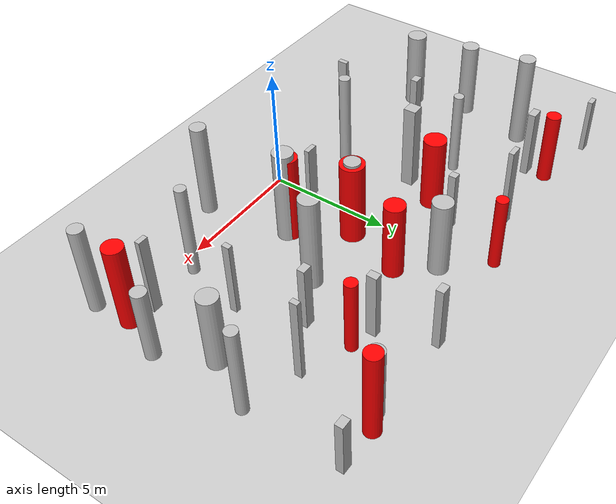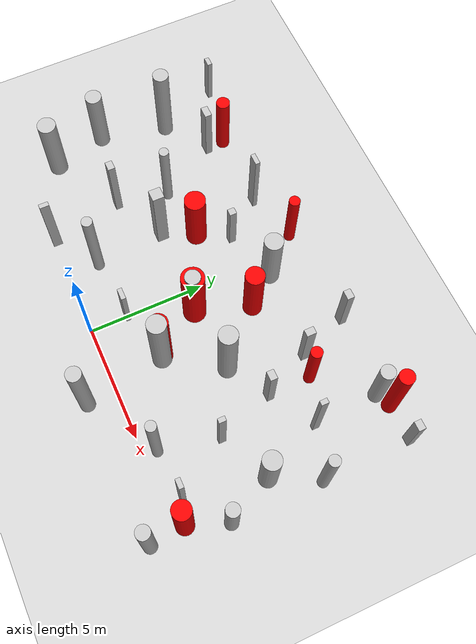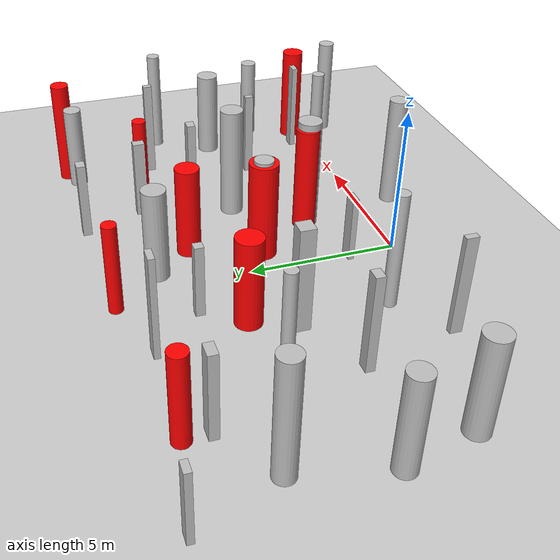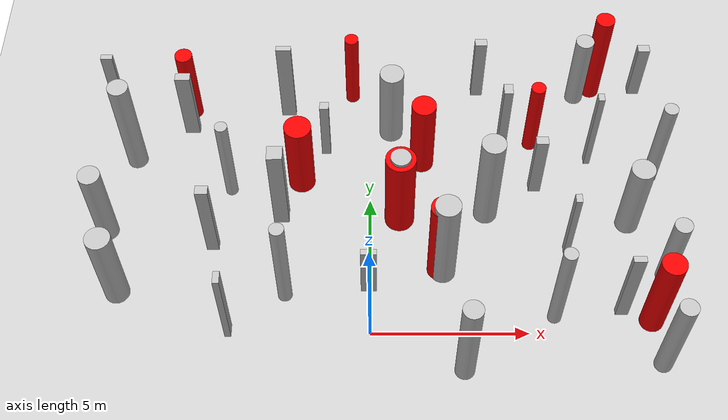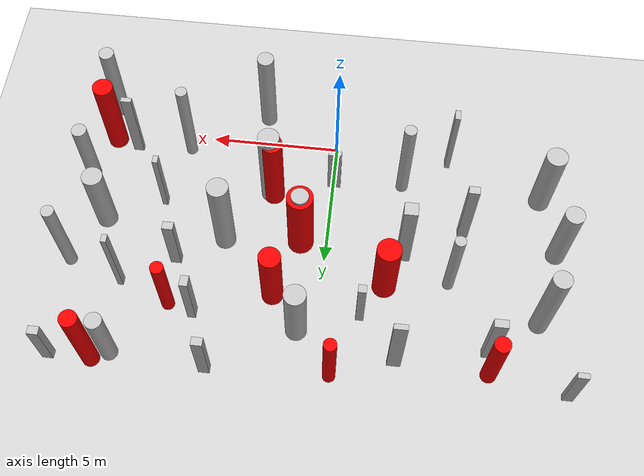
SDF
<sdf version="1.7">
 <world name="default">
  <model name="ground_plane">
   <static>1</static>
   <link name="link">
    <collision name="collision">
     <geometry><plane><normal>0 0 1</normal><size>100 100</size></plane></geometry>
     <surface>
      <contact><collide_bitmask>65535</collide_bitmask></contact>
      <friction><ode><mu>100</mu><mu2>50</mu2></ode></friction>
     </surface>
    </collision>
    <visual name="visual">
     <cast_shadows>0</cast_shadows>
     <geometry><plane><normal>0 0 1</normal><size>100 100</size></plane></geometry>
     <material>
      <script><uri>file://media/materials/scripts/gazebo.material</uri><name>Gazebo/Grey</name></script>
     </material>
    </visual>
   </link>
  </model>
  <model name="dynamic_cylinder_0_1.0_1.0_3.4">
   <static>true</static>
   <pose>0.9762700785464951 4.30378732744839 1.7187936056313462 0 0 0</pose>
   <link name="link">
    <visual name="visual">
     <geometry>
      <cylinder><radius>0.4890988281503088</radius><length>3.4375872112626924</length></cylinder>
     </geometry>
     <material><ambient>1 0 0 1</ambient><diffuse>1 0 0 1</diffuse><specular>0.5 0.5 0.5 1</specular></material>
    </visual>
    <collision name="dynamic_collision">
     <geometry>
      <cylinder><radius>0.4890988281503088</radius><length>3.4375872112626924</length></cylinder>
     </geometry>
     <surface><contact><collide_bitmask>65535</collide_bitmask></contact></surface>
    </collision>
   </link>
   <plugin name="obstacle_motion" filename="libobstaclePathPlugin.so">
    <orientation>false</orientation>
    <loop>0</loop>
    <velocity>0.8917730007820798</velocity>
    <path>
     <waypoint>0.9762700785464951 4.30378732744839 1.7187936056313462</waypoint>
     <waypoint>0.8976636599379368 -1.5269040132219054 1.7187936056313462</waypoint>
    </path>
   </plugin>
  </model>
  <model name="dynamic_cylinder_1_0.9_0.9_3.1">
   <static>true</static>
   <pose>-2.3311696234844455 5.834500761653292 1.5435646498507705 0 0 0</pose>
   <link name="link">
    <visual name="visual">
     <geometry>
      <cylinder><radius>0.4497859536643814</radius><length>3.087129299701541</length></cylinder>
     </geometry>
     <material><ambient>1 0 0 1</ambient><diffuse>1 0 0 1</diffuse><specular>0.5 0.5 0.5 1</specular></material>
    </visual>
    <collision name="dynamic_collision">
     <geometry>
      <cylinder><radius>0.4497859536643814</radius><length>3.087129299701541</length></cylinder>
     </geometry>
     <surface><contact><collide_bitmask>65535</collide_bitmask></contact></surface>
    </collision>
   </link>
   <plugin name="obstacle_motion" filename="libobstaclePathPlugin.so">
    <orientation>false</orientation>
    <loop>0</loop>
    <velocity>0.02021839744032572</velocity>
    <path>
     <waypoint>-2.3311696234844455 5.834500761653292 1.5435646498507705</waypoint>
     <waypoint>1.3608912218786458 8.51193276585322 1.5435646498507705</waypoint>
    </path>
   </plugin>
  </model>
  <model name="dynamic_cylinder_2_0.5_0.5_3.1">
   <static>true</static>
   <pose>5.563135018997009 7.400242964936382 1.5591372129344667 0 0 0</pose>
   <link name="link">
    <visual name="visual">
     <geometry>
      <cylinder><radius>0.24300598622271394</radius><length>3.1182744258689334</length></cylinder>
     </geometry>
     <material><ambient>1 0 0 1</ambient><diffuse>1 0 0 1</diffuse><specular>0.5 0.5 0.5 1</specular></material>
    </visual>
    <collision name="dynamic_collision">
     <geometry>
      <cylinder><radius>0.24300598622271394</radius><length>3.1182744258689334</length></cylinder>
     </geometry>
     <surface><contact><collide_bitmask>65535</collide_bitmask></contact></surface>
    </collision>
   </link>
   <plugin name="obstacle_motion" filename="libobstaclePathPlugin.so">
    <orientation>false</orientation>
    <loop>0</loop>
    <velocity>0.6399210213275238</velocity>
    <path>
     <waypoint>5.563135018997009 7.400242964936382 1.5591372129344667</waypoint>
     <waypoint>5.983171284334471 -0.7704127549413631 1.5591372129344667</waypoint>
    </path>
   </plugin>
  </model>
  <model name="dynamic_cylinder_3_0.8_0.8_3.6">
   <static>true</static>
   <pose>8.893378340991678 0.43696643500143395 1.7842169744343241 0 0 0</pose>
   <link name="link">
    <visual name="visual">
     <geometry>
      <cylinder><radius>0.3852906491227631</radius><length>3.5684339488686483</length></cylinder>
     </geometry>
     <material><ambient>1 0 0 1</ambient><diffuse>1 0 0 1</diffuse><specular>0.5 0.5 0.5 1</specular></material>
    </visual>
    <collision name="dynamic_collision">
     <geometry>
      <cylinder><radius>0.3852906491227631</radius><length>3.5684339488686483</length></cylinder>
     </geometry>
     <surface><contact><collide_bitmask>65535</collide_bitmask></contact></surface>
    </collision>
   </link>
   <plugin name="obstacle_motion" filename="libobstaclePathPlugin.so">
    <orientation>false</orientation>
    <loop>0</loop>
    <velocity>0.018789800436355142</velocity>
    <path>
     <waypoint>8.893378340991678 0.43696643500143395 1.7842169744343241</waypoint>
     <waypoint>-4.70888775790746 5.484673788684333 1.7842169744343241</waypoint>
    </path>
   </plugin>
  </model>
  <model name="dynamic_cylinder_4_0.8_0.8_3.7">
   <static>true</static>
   <pose>2.2419144544484286 2.3386799374951384 1.8488155979636325 0 0 0</pose>
   <link name="link">
    <visual name="visual">
     <geometry>
      <cylinder><radius>0.4000300146337003</radius><length>3.697631195927265</length></cylinder>
     </geometry>
     <material><ambient>1 0 0 1</ambient><diffuse>1 0 0 1</diffuse><specular>0.5 0.5 0.5 1</specular></material>
    </visual>
    <collision name="dynamic_collision">
     <geometry>
      <cylinder><radius>0.4000300146337003</radius><length>3.697631195927265</length></cylinder>
     </geometry>
     <surface><contact><collide_bitmask>65535</collide_bitmask></contact></surface>
    </collision>
   </link>
   <plugin name="obstacle_motion" filename="libobstaclePathPlugin.so">
    <orientation>false</orientation>
    <loop>0</loop>
    <velocity>0.06022547162926983</velocity>
    <path>
     <waypoint>2.2419144544484286 2.3386799374951384 1.8488155979636325</waypoint>
     <waypoint>3.636405982069668 -2.80984198852428 1.8488155979636325</waypoint>
    </path>
   </plugin>
  </model>
  <model name="dynamic_cylinder_7_0.5_0.5_3.1">
   <static>true</static>
   <pose>-0.6269759670459685 9.535221763806742 1.5600982806065844 0 0 0</pose>
   <link name="link">
    <visual name="visual">
     <geometry>
      <cylinder><radius>0.23561831568627323</radius><length>3.120196561213169</length></cylinder>
     </geometry>
     <material><ambient>1 0 0 1</ambient><diffuse>1 0 0 1</diffuse><specular>0.5 0.5 0.5 1</specular></material>
    </visual>
    <collision name="dynamic_collision">
     <geometry>
      <cylinder><radius>0.23561831568627323</radius><length>3.120196561213169</length></cylinder>
     </geometry>
     <surface><contact><collide_bitmask>65535</collide_bitmask></contact></surface>
    </collision>
   </link>
   <plugin name="obstacle_motion" filename="libobstaclePathPlugin.so">
    <orientation>false</orientation>
    <loop>0</loop>
    <velocity>0.29614019752214493</velocity>
    <path>
     <waypoint>-0.6269759670459685 9.535221763806742 1.5600982806065844</waypoint>
     <waypoint>4.785271587966033 -9.216244154913586 1.5600982806065844</waypoint>
    </path>
   </plugin>
  </model>
  <model name="dynamic_cylinder_16_0.6_0.6_3.1">
   <static>true</static>
   <pose>-6.276139882393277 8.887447799678672 1.5290145801619377 0 0 0</pose>
   <link name="link">
    <visual name="visual">
     <geometry>
      <cylinder><radius>0.2935387645982308</radius><length>3.0580291603238754</length></cylinder>
     </geometry>
     <material><ambient>1 0 0 1</ambient><diffuse>1 0 0 1</diffuse><specular>0.5 0.5 0.5 1</specular></material>
    </visual>
    <collision name="dynamic_collision">
     <geometry>
      <cylinder><radius>0.2935387645982308</radius><length>3.0580291603238754</length></cylinder>
     </geometry>
     <surface><contact><collide_bitmask>65535</collide_bitmask></contact></surface>
    </collision>
   </link>
   <plugin name="obstacle_motion" filename="libobstaclePathPlugin.so">
    <orientation>false</orientation>
    <loop>0</loop>
    <velocity>0.4344166255581208</velocity>
    <path>
     <waypoint>-6.276139882393277 8.887447799678672 1.5290145801619377</waypoint>
     <waypoint>-0.1908238276486589 -5.451707440533536 1.5290145801619377</waypoint>
    </path>
   </plugin>
  </model>
  <model name="dynamic_cylinder_17_0.6_0.6_3.8">
   <static>true</static>
   <pose>7.933425860806842 9.806778947934088 1.8791893269180706 0 0 0</pose>
   <link name="link">
    <visual name="visual">
     <geometry>
      <cylinder><radius>0.3150391682515694</radius><length>3.7583786538361412</length></cylinder>
     </geometry>
     <material><ambient>1 0 0 1</ambient><diffuse>1 0 0 1</diffuse><specular>0.5 0.5 0.5 1</specular></material>
    </visual>
    <collision name="dynamic_collision">
     <geometry>
      <cylinder><radius>0.3150391682515694</radius><length>3.7583786538361412</length></cylinder>
     </geometry>
     <surface><contact><collide_bitmask>65535</collide_bitmask></contact></surface>
    </collision>
   </link>
   <plugin name="obstacle_motion" filename="libobstaclePathPlugin.so">
    <orientation>false</orientation>
    <loop>0</loop>
    <velocity>0.32001715082246784</velocity>
    <path>
     <waypoint>7.933425860806842 9.806778947934088 1.8791893269180706</waypoint>
     <waypoint>3.261564062002016 -4.733552465256987 1.8791893269180706</waypoint>
    </path>
   </plugin>
  </model>
  <model name="dynamic_cylinder_18_0.8_0.8_3.2">
   <static>true</static>
   <pose>1.766342271072114 6.620969104723809 1.592817972152976 0 0 0</pose>
   <link name="link">
    <visual name="visual">
     <geometry>
      <cylinder><radius>0.4062464829163446</radius><length>3.185635944305952</length></cylinder>
     </geometry>
     <material><ambient>1 0 0 1</ambient><diffuse>1 0 0 1</diffuse><specular>0.5 0.5 0.5 1</specular></material>
    </visual>
    <collision name="dynamic_collision">
     <geometry>
      <cylinder><radius>0.4062464829163446</radius><length>3.185635944305952</length></cylinder>
     </geometry>
     <surface><contact><collide_bitmask>65535</collide_bitmask></contact></surface>
    </collision>
   </link>
   <plugin name="obstacle_motion" filename="libobstaclePathPlugin.so">
    <orientation>false</orientation>
    <loop>0</loop>
    <velocity>0.9527916569719446</velocity>
    <path>
     <waypoint>1.766342271072114 6.620969104723809 1.592817972152976</waypoint>
     <waypoint>7.453013108947907 -4.529159303687285 1.592817972152976</waypoint>
    </path>
   </plugin>
  </model>
  <model name="cylinder_0_0.7_0.7_3.5">
   <static>true</static>
   <pose>0.9762700785464951 4.30378732744839 1.7724415914984484 0 0 0</pose>
   <link name="link">
    <visual name="visual">
     <geometry>
      <cylinder><radius>0.3270964398016714</radius><length>3.5448831829968968</length></cylinder>
     </geometry>
     <material>
      <ambient>0.75 0.75 0.75 1</ambient>
      <diffuse>0.75 0.75 0.75 1</diffuse>
      <specular>0.2 0.2 0.2 1</specular>
     </material>
    </visual>
    <collision name="static_collision">
     <geometry>
      <cylinder><radius>0.3270964398016714</radius><length>3.5448831829968968</length></cylinder>
     </geometry>
     <surface><contact><collide_bitmask>65535</collide_bitmask></contact></surface>
    </collision>
   </link>
  </model>
  <model name="cylinder_2_0.4_0.4_3.9">
   <static>true</static>
   <pose>5.834500761653292 0.5778983950580887 1.9627983191463305 0 0 0</pose>
   <link name="link">
    <visual name="visual">
     <geometry>
      <cylinder><radius>0.2213108174593661</radius><length>3.925596638292661</length></cylinder>
     </geometry>
     <material>
      <ambient>0.75 0.75 0.75 1</ambient>
      <diffuse>0.75 0.75 0.75 1</diffuse>
      <specular>0.2 0.2 0.2 1</specular>
     </material>
    </visual>
    <collision name="static_collision">
     <geometry>
      <cylinder><radius>0.2213108174593661</radius><length>3.925596638292661</length></cylinder>
     </geometry>
     <surface><contact><collide_bitmask>65535</collide_bitmask></contact></surface>
    </collision>
   </link>
  </model>
  <model name="cylinder_4_0.5_0.5_3.8">
   <static>true</static>
   <pose>9.572366844655281 5.983171284334471 1.8902645881432276 0 0 0</pose>
   <link name="link">
    <visual name="visual">
     <geometry>
      <cylinder><radius>0.23548232776067998</radius><length>3.7805291762864552</length></cylinder>
     </geometry>
     <material>
      <ambient>0.75 0.75 0.75 1</ambient>
      <diffuse>0.75 0.75 0.75 1</diffuse>
      <specular>0.2 0.2 0.2 1</specular>
     </material>
    </visual>
    <collision name="static_collision">
     <geometry>
      <cylinder><radius>0.23548232776067998</radius><length>3.7805291762864552</length></cylinder>
     </geometry>
     <surface><contact><collide_bitmask>65535</collide_bitmask></contact></surface>
    </collision>
   </link>
  </model>
  <model name="cylinder_6_0.4_0.4_3.6">
   <static>true</static>
   <pose>-4.70888775790746 5.484673788684333 1.7842169744343241 0 0 0</pose>
   <link name="link">
    <visual name="visual">
     <geometry>
      <cylinder><radius>0.20563694013090655</radius><length>3.5684339488686483</length></cylinder>
     </geometry>
     <material>
      <ambient>0.75 0.75 0.75 1</ambient>
      <diffuse>0.75 0.75 0.75 1</diffuse>
      <specular>0.2 0.2 0.2 1</specular>
     </material>
    </visual>
    <collision name="static_collision">
     <geometry>
      <cylinder><radius>0.20563694013090655</radius><length>3.5684339488686483</length></cylinder>
     </geometry>
     <surface><contact><collide_bitmask>65535</collide_bitmask></contact></surface>
    </collision>
   </link>
  </model>
  <model name="cylinder_12_0.6_0.6_3.0">
   <static>true</static>
   <pose>9.535221763806742 2.0969103949009202 1.5195938961271604 0 0 0</pose>
   <link name="link">
    <visual name="visual">
     <geometry>
      <cylinder><radius>0.2848420887729229</radius><length>3.039187792254321</length></cylinder>
     </geometry>
     <material>
      <ambient>0.75 0.75 0.75 1</ambient>
      <diffuse>0.75 0.75 0.75 1</diffuse>
      <specular>0.2 0.2 0.2 1</specular>
     </material>
    </visual>
    <collision name="static_collision">
     <geometry>
      <cylinder><radius>0.2848420887729229</radius><length>3.039187792254321</length></cylinder>
     </geometry>
     <surface><contact><collide_bitmask>65535</collide_bitmask></contact></surface>
    </collision>
   </link>
  </model>
  <model name="cylinder_14_0.7_0.7_3.3">
   <static>true</static>
   <pose>-8.717050073024312 3.849442387400398 1.6326947454697227 0 0 0</pose>
   <link name="link">
    <visual name="visual">
     <geometry>
      <cylinder><radius>0.3569744160400099</radius><length>3.2653894909394454</length></cylinder>
     </geometry>
     <material>
      <ambient>0.75 0.75 0.75 1</ambient>
      <diffuse>0.75 0.75 0.75 1</diffuse>
      <specular>0.2 0.2 0.2 1</specular>
     </material>
    </visual>
    <collision name="static_collision">
     <geometry>
      <cylinder><radius>0.3569744160400099</radius><length>3.2653894909394454</length></cylinder>
     </geometry>
     <surface><contact><collide_bitmask>65535</collide_bitmask></contact></surface>
    </collision>
   </link>
  </model>
  <model name="cylinder_28_0.8_0.8_3.2">
   <static>true</static>
   <pose>0.731584222174444 7.933425860806842 1.608448492199237 0 0 0</pose>
   <link name="link">
    <visual name="visual">
     <geometry>
      <cylinder><radius>0.3989234609300303</radius><length>3.216896984398474</length></cylinder>
     </geometry>
     <material>
      <ambient>0.75 0.75 0.75 1</ambient>
      <diffuse>0.75 0.75 0.75 1</diffuse>
      <specular>0.2 0.2 0.2 1</specular>
     </material>
    </visual>
    <collision name="static_collision">
     <geometry>
      <cylinder><radius>0.3989234609300303</radius><length>3.216896984398474</length></cylinder>
     </geometry>
     <surface><contact><collide_bitmask>65535</collide_bitmask></contact></surface>
    </collision>
   </link>
  </model>
  <model name="box_2_0.5_0.2_3.5">
   <static>true</static>
   <pose>-2.8877452430008876 8.80863890505626 1.7486636198505474 0 0 0</pose>
   <link name="link">
    <visual name="visual">
     <geometry><box><size>0.5 0.2 3.5</size></box></geometry>
     <material>
      <ambient>0.75 0.75 0.75 1</ambient>
      <diffuse>0.75 0.75 0.75 1</diffuse>
      <specular>0.2 0.2 0.2 1</specular>
     </material>
    </visual>
    <collision name="static_collision">
     <geometry><box><size>0.5 0.2 3.5</size></box></geometry>
     <surface><contact><collide_bitmask>65535</collide_bitmask></contact></surface>
    </collision>
   </link>
  </model>
  <model name="box_4_0.4_0.3_2.7">
   <static>true</static>
   <pose>5.5739079188220675 5.5481512369750625 1.3738131379325615 0 0 0</pose>
   <link name="link">
    <visual name="visual">
     <geometry><box><size>0.4 0.3 2.7</size></box></geometry>
     <material>
      <ambient>0.75 0.75 0.75 1</ambient>
      <diffuse>0.75 0.75 0.75 1</diffuse>
      <specular>0.2 0.2 0.2 1</specular>
     </material>
    </visual>
    <collision name="static_collision">
     <geometry><box><size>0.4 0.3 2.7</size></box></geometry>
     <surface><contact><collide_bitmask>65535</collide_bitmask></contact></surface>
    </collision>
   </link>
  </model>
  <model name="box_8_0.4_0.3_3.3">
   <static>true</static>
   <pose>-5.17162759846852 3.2500914306535194 1.6658591175591877 0 0 0</pose>
   <link name="link">
    <visual name="visual">
     <geometry><box><size>0.4 0.3 3.3</size></box></geometry>
     <material>
      <ambient>0.75 0.75 0.75 1</ambient>
      <diffuse>0.75 0.75 0.75 1</diffuse>
      <specular>0.2 0.2 0.2 1</specular>
     </material>
    </visual>
    <collision name="static_collision">
     <geometry><box><size>0.4 0.3 3.3</size></box></geometry>
     <surface><contact><collide_bitmask>65535</collide_bitmask></contact></surface>
    </collision>
   </link>
  </model>
  <model name="box_10_0.3_0.4_2.8">
   <static>true</static>
   <pose>4.614181982549523 7.6344042466767945 1.3790568960774285 0 0 0</pose>
   <link name="link">
    <visual name="visual">
     <geometry><box><size>0.3 0.4 2.8</size></box></geometry>
     <material>
      <ambient>0.75 0.75 0.75 1</ambient>
      <diffuse>0.75 0.75 0.75 1</diffuse>
      <specular>0.2 0.2 0.2 1</specular>
     </material>
    </visual>
    <collision name="static_collision">
     <geometry><box><size>0.3 0.4 2.8</size></box></geometry>
     <surface><contact><collide_bitmask>65535</collide_bitmask></contact></surface>
    </collision>
   </link>
  </model>
  <model name="box_14_0.5_0.2_2.3">
   <static>true</static>
   <pose>-0.0444618434931634 1.6216385934412614 1.1690254061291614 0 0 0</pose>
   <link name="link">
    <visual name="visual">
     <geometry><box><size>0.5 0.2 2.3</size></box></geometry>
     <material>
      <ambient>0.75 0.75 0.75 1</ambient>
      <diffuse>0.75 0.75 0.75 1</diffuse>
      <specular>0.2 0.2 0.2 1</specular>
     </material>
    </visual>
    <collision name="static_collision">
     <geometry><box><size>0.5 0.2 2.3</size></box></geometry>
     <surface><contact><collide_bitmask>65535</collide_bitmask></contact></surface>
    </collision>
   </link>
  </model>
  <model name="box_16_0.2_0.3_3.1">
   <static>true</static>
   <pose>6.448134767113807 3.068423222272738 1.5369230010823904 0 0 0</pose>
   <link name="link">
    <visual name="visual">
     <geometry><box><size>0.2 0.3 3.1</size></box></geometry>
     <material>
      <ambient>0.75 0.75 0.75 1</ambient>
      <diffuse>0.75 0.75 0.75 1</diffuse>
      <specular>0.2 0.2 0.2 1</specular>
     </material>
    </visual>
    <collision name="static_collision">
     <geometry><box><size>0.2 0.3 3.1</size></box></geometry>
     <surface><contact><collide_bitmask>65535</collide_bitmask></contact></surface>
    </collision>
   </link>
  </model>
  <model name="box_18_0.4_0.3_2.7">
   <static>true</static>
   <pose>3.815695523130591 9.746975141479364 1.3645446259967866 0 0 0</pose>
   <link name="link">
    <visual name="visual">
     <geometry><box><size>0.4 0.3 2.7</size></box></geometry>
     <material>
      <ambient>0.75 0.75 0.75 1</ambient>
      <diffuse>0.75 0.75 0.75 1</diffuse>
      <specular>0.2 0.2 0.2 1</specular>
     </material>
    </visual>
    <collision name="static_collision">
     <geometry><box><size>0.4 0.3 2.7</size></box></geometry>
     <surface><contact><collide_bitmask>65535</collide_bitmask></contact></surface>
    </collision>
   </link>
  </model>
  <model name="box_24_0.2_0.3_3.5">
   <static>true</static>
   <pose>7.476643566694364 6.679632877532637 1.7712254629659103 0 0 0</pose>
   <link name="link">
    <visual name="visual">
     <geometry><box><size>0.2 0.3 3.5</size></box></geometry>
     <material>
      <ambient>0.75 0.75 0.75 1</ambient>
      <diffuse>0.75 0.75 0.75 1</diffuse>
      <specular>0.2 0.2 0.2 1</specular>
     </material>
    </visual>
    <collision name="static_collision">
     <geometry><box><size>0.2 0.3 3.5</size></box></geometry>
     <surface><contact><collide_bitmask>65535</collide_bitmask></contact></surface>
    </collision>
   </link>
  </model>
  <model name="box_26_0.2_0.4_3.4">
   <static>true</static>
   <pose>-4.467005395816209 0.1268583864760835 1.706410577667011 0 0 0</pose>
   <link name="link">
    <visual name="visual">
     <geometry><box><size>0.2 0.4 3.4</size></box></geometry>
     <material>
      <ambient>0.75 0.75 0.75 1</ambient>
      <diffuse>0.75 0.75 0.75 1</diffuse>
      <specular>0.2 0.2 0.2 1</specular>
     </material>
    </visual>
    <collision name="static_collision">
     <geometry><box><size>0.2 0.4 3.4</size></box></geometry>
     <surface><contact><collide_bitmask>65535</collide_bitmask></contact></surface>
    </collision>
   </link>
  </model>
  <model name="cylinder_1_0.6_0.6_4.0">
   <static>true</static>
   <pose>2.917882261333123 -1.2482557747461502 1.9818313802505148 0 0 0</pose>
   <link name="link">
    <visual name="visual">
     <geometry>
      <cylinder><radius>0.3150324556477333</radius><length>3.9636627605010295</length></cylinder>
     </geometry>
     <material>
      <ambient>0.75 0.75 0.75 1</ambient>
      <diffuse>0.75 0.75 0.75 1</diffuse>
      <specular>0.2 0.2 0.2 1</specular>
     </material>
    </visual>
    <collision name="static_collision">
     <geometry>
      <cylinder><radius>0.3150324556477333</radius><length>3.9636627605010295</length></cylinder>
     </geometry>
     <surface><contact><collide_bitmask>65535</collide_bitmask></contact></surface>
    </collision>
   </link>
  </model>
  <model name="cylinder_7_0.8_0.8_3.9">
   <static>true</static>
   <pose>2.352709941517542 2.2419144544484286 1.9718740392573122 0 0 0</pose>
   <link name="link">
    <visual name="visual">
     <geometry>
      <cylinder><radius>0.404546089731045</radius><length>3.9437480785146244</length></cylinder>
     </geometry>
     <material>
      <ambient>0.75 0.75 0.75 1</ambient>
      <diffuse>0.75 0.75 0.75 1</diffuse>
      <specular>0.2 0.2 0.2 1</specular>
     </material>
    </visual>
    <collision name="static_collision">
     <geometry>
      <cylinder><radius>0.404546089731045</radius><length>3.9437480785146244</length></cylinder>
     </geometry>
     <surface><contact><collide_bitmask>65535</collide_bitmask></contact></surface>
    </collision>
   </link>
  </model>
  <model name="cylinder_9_0.5_0.5_4.0">
   <static>true</static>
   <pose>-2.725784581147548 1.4039354083575937 1.994186919029613 0 0 0</pose>
   <link name="link">
    <visual name="visual">
     <geometry>
      <cylinder><radius>0.23061344322440844</radius><length>3.988373838059226</length></cylinder>
     </geometry>
     <material>
      <ambient>0.75 0.75 0.75 1</ambient>
      <diffuse>0.75 0.75 0.75 1</diffuse>
      <specular>0.2 0.2 0.2 1</specular>
     </material>
    </visual>
    <collision name="static_collision">
     <geometry>
      <cylinder><radius>0.23061344322440844</radius><length>3.988373838059226</length></cylinder>
     </geometry>
     <surface><contact><collide_bitmask>65535</collide_bitmask></contact></surface>
    </collision>
   </link>
  </model>
  <model name="cylinder_11_0.7_0.7_4.0">
   <static>true</static>
   <pose>-8.057974484138775 6.758898149976076 1.988229732506698 0 0 0</pose>
   <link name="link">
    <visual name="visual">
     <geometry>
      <cylinder><radius>0.3405953604943105</radius><length>3.976459465013396</length></cylinder>
     </geometry>
     <material>
      <ambient>0.75 0.75 0.75 1</ambient>
      <diffuse>0.75 0.75 0.75 1</diffuse>
      <specular>0.2 0.2 0.2 1</specular>
     </material>
    </visual>
    <collision name="static_collision">
     <geometry>
      <cylinder><radius>0.3405953604943105</radius><length>3.976459465013396</length></cylinder>
     </geometry>
     <surface><contact><collide_bitmask>65535</collide_bitmask></contact></surface>
    </collision>
   </link>
  </model>
  <model name="cylinder_15_0.8_0.8_3.3">
   <static>true</static>
   <pose>-8.121189784831166 1.5189299111235854 1.6592844762256618 0 0 0</pose>
   <link name="link">
    <visual name="visual">
     <geometry>
      <cylinder><radius>0.4002231139891045</radius><length>3.3185689524513236</length></cylinder>
     </geometry>
     <material>
      <ambient>0.75 0.75 0.75 1</ambient>
      <diffuse>0.75 0.75 0.75 1</diffuse>
      <specular>0.2 0.2 0.2 1</specular>
     </material>
    </visual>
    <collision name="static_collision">
     <geometry>
      <cylinder><radius>0.4002231139891045</radius><length>3.3185689524513236</length></cylinder>
     </geometry>
     <surface><contact><collide_bitmask>65535</collide_bitmask></contact></surface>
    </collision>
   </link>
  </model>
  <model name="cylinder_17_0.6_0.6_3.7">
   <static>true</static>
   <pose>9.054980230339702 -1.0574924276474533 1.849739637658752 0 0 0</pose>
   <link name="link">
    <visual name="visual">
     <geometry>
      <cylinder><radius>0.2892310852565401</radius><length>3.699479275317504</length></cylinder>
     </geometry>
     <material>
      <ambient>0.75 0.75 0.75 1</ambient>
      <diffuse>0.75 0.75 0.75 1</diffuse>
      <specular>0.2 0.2 0.2 1</specular>
     </material>
    </visual>
    <collision name="static_collision">
     <geometry>
      <cylinder><radius>0.2892310852565401</radius><length>3.699479275317504</length></cylinder>
     </geometry>
     <surface><contact><collide_bitmask>65535</collide_bitmask></contact></surface>
    </collision>
   </link>
  </model>
  <model name="cylinder_19_0.8_0.8_4.0">
   <static>true</static>
   <pose>3.850631801555318 4.50508559639281 1.9780418173616119 0 0 0</pose>
   <link name="link">
    <visual name="visual">
     <geometry>
      <cylinder><radius>0.3931970597688912</radius><length>3.9560836347232238</length></cylinder>
     </geometry>
     <material>
      <ambient>0.75 0.75 0.75 1</ambient>
      <diffuse>0.75 0.75 0.75 1</diffuse>
      <specular>0.2 0.2 0.2 1</specular>
     </material>
    </visual>
    <collision name="static_collision">
     <geometry>
      <cylinder><radius>0.3931970597688912</radius><length>3.9560836347232238</length></cylinder>
     </geometry>
     <surface><contact><collide_bitmask>65535</collide_bitmask></contact></surface>
    </collision>
   </link>
  </model>
  <model name="cylinder_23_0.6_0.6_3.0">
   <static>true</static>
   <pose>7.327646518572585 9.510430100057718 1.505857042092501 0 0 0</pose>
   <link name="link">
    <visual name="visual">
     <geometry>
      <cylinder><radius>0.30799341934350916</radius><length>3.011714084185002</length></cylinder>
     </geometry>
     <material>
      <ambient>0.75 0.75 0.75 1</ambient>
      <diffuse>0.75 0.75 0.75 1</diffuse>
      <specular>0.2 0.2 0.2 1</specular>
     </material>
    </visual>
    <collision name="static_collision">
     <geometry>
      <cylinder><radius>0.30799341934350916</radius><length>3.011714084185002</length></cylinder>
     </geometry>
     <surface><contact><collide_bitmask>65535</collide_bitmask></contact></surface>
    </collision>
   </link>
  </model>
  <model name="cylinder_25_0.8_0.8_3.2">
   <static>true</static>
   <pose>8.561625869311818 4.088288038470655 1.5823470782489564 0 0 0</pose>
   <link name="link">
    <visual name="visual">
     <geometry>
      <cylinder><radius>0.386443520449929</radius><length>3.1646941564979127</length></cylinder>
     </geometry>
     <material>
      <ambient>0.75 0.75 0.75 1</ambient>
      <diffuse>0.75 0.75 0.75 1</diffuse>
      <specular>0.2 0.2 0.2 1</specular>
     </material>
    </visual>
    <collision name="static_collision">
     <geometry>
      <cylinder><radius>0.386443520449929</radius><length>3.1646941564979127</length></cylinder>
     </geometry>
     <surface><contact><collide_bitmask>65535</collide_bitmask></contact></surface>
    </collision>
   </link>
  </model>
  <model name="box_5_0.5_0.3_2.9">
   <static>true</static>
   <pose>-6.257382164983105 8.079679098564739 1.4569114216457657 0 0 0</pose>
   <link name="link">
    <visual name="visual">
     <geometry><box><size>0.5 0.3 2.9</size></box></geometry>
     <material>
      <ambient>0.75 0.75 0.75 1</ambient>
      <diffuse>0.75 0.75 0.75 1</diffuse>
      <specular>0.2 0.2 0.2 1</specular>
     </material>
    </visual>
    <collision name="static_collision">
     <geometry><box><size>0.5 0.3 2.9</size></box></geometry>
     <surface><contact><collide_bitmask>65535</collide_bitmask></contact></surface>
    </collision>
   </link>
  </model>
  <model name="box_7_0.4_0.3_2.3">
   <static>true</static>
   <pose>9.485124256361004 9.806900031217879 1.1629544260466054 0 0 0</pose>
   <link name="link">
    <visual name="visual">
     <geometry><box><size>0.4 0.3 2.3</size></box></geometry>
     <material>
      <ambient>0.75 0.75 0.75 1</ambient>
      <diffuse>0.75 0.75 0.75 1</diffuse>
      <specular>0.2 0.2 0.2 1</specular>
     </material>
    </visual>
    <collision name="static_collision">
     <geometry><box><size>0.4 0.3 2.3</size></box></geometry>
     <surface><contact><collide_bitmask>65535</collide_bitmask></contact></surface>
    </collision>
   </link>
  </model>
  <model name="box_13_0.5_0.5_3.6">
   <static>true</static>
   <pose>-2.962140076139148 4.428133359199048 1.8130538632474607 0 0 0</pose>
   <link name="link">
    <visual name="visual">
     <geometry><box><size>0.5 0.5 3.6</size></box></geometry>
     <material>
      <ambient>0.75 0.75 0.75 1</ambient>
      <diffuse>0.75 0.75 0.75 1</diffuse>
      <specular>0.2 0.2 0.2 1</specular>
     </material>
    </visual>
    <collision name="static_collision">
     <geometry><box><size>0.5 0.5 3.6</size></box></geometry>
     <surface><contact><collide_bitmask>65535</collide_bitmask></contact></surface>
    </collision>
   </link>
  </model>
  <model name="box_15_0.3_0.3_2.5">
   <static>true</static>
   <pose>-1.525872930890543 7.142498350091348 1.271252076761864 0 0 0</pose>
   <link name="link">
    <visual name="visual">
     <geometry><box><size>0.3 0.3 2.5</size></box></geometry>
     <material>
      <ambient>0.75 0.75 0.75 1</ambient>
      <diffuse>0.75 0.75 0.75 1</diffuse>
      <specular>0.2 0.2 0.2 1</specular>
     </material>
    </visual>
    <collision name="static_collision">
     <geometry><box><size>0.3 0.3 2.5</size></box></geometry>
     <surface><contact><collide_bitmask>65535</collide_bitmask></contact></surface>
    </collision>
   </link>
  </model>
  <model name="box_19_0.4_0.2_2.4">
   <static>true</static>
   <pose>-9.063872905756226 9.414628855412658 1.1785799680576563 0 0 0</pose>
   <link name="link">
    <visual name="visual">
     <geometry><box><size>0.4 0.2 2.4</size></box></geometry>
     <material>
      <ambient>0.75 0.75 0.75 1</ambient>
      <diffuse>0.75 0.75 0.75 1</diffuse>
      <specular>0.2 0.2 0.2 1</specular>
     </material>
    </visual>
    <collision name="static_collision">
     <geometry><box><size>0.4 0.2 2.4</size></box></geometry>
     <surface><contact><collide_bitmask>65535</collide_bitmask></contact></surface>
    </collision>
   </link>
  </model>
  <model name="box_27_0.4_0.2_3.3">
   <static>true</static>
   <pose>7.972753368165325 0.7434025589741484 1.6736532695846353 0 0 0</pose>
   <link name="link">
    <visual name="visual">
     <geometry><box><size>0.4 0.2 3.3</size></box></geometry>
     <material>
      <ambient>0.75 0.75 0.75 1</ambient>
      <diffuse>0.75 0.75 0.75 1</diffuse>
      <specular>0.2 0.2 0.2 1</specular>
     </material>
    </visual>
    <collision name="static_collision">
     <geometry><box><size>0.4 0.2 3.3</size></box></geometry>
     <surface><contact><collide_bitmask>65535</collide_bitmask></contact></surface>
    </collision>
   </link>
  </model>
 </world>
</sdf>
